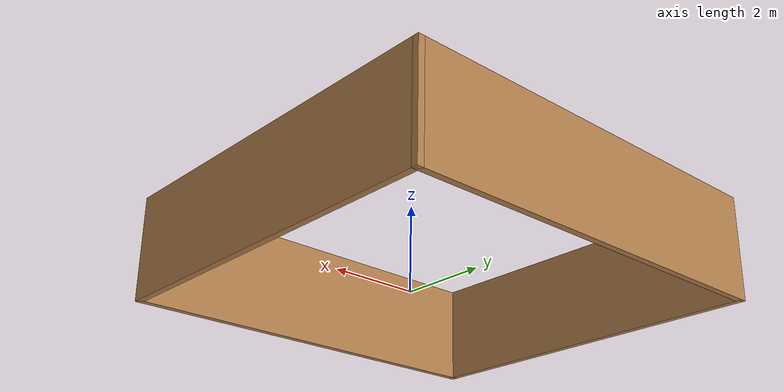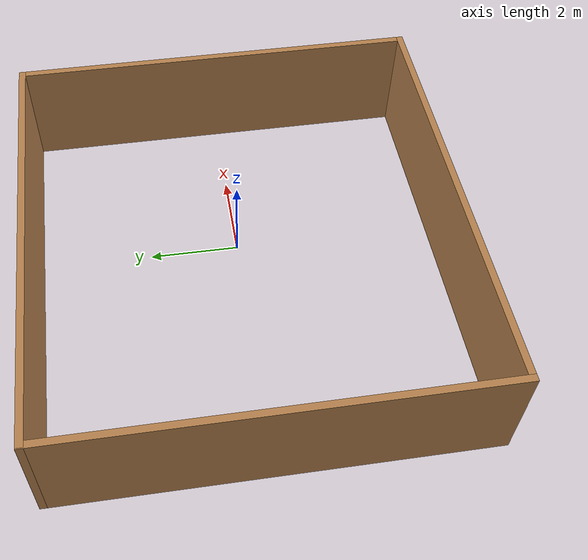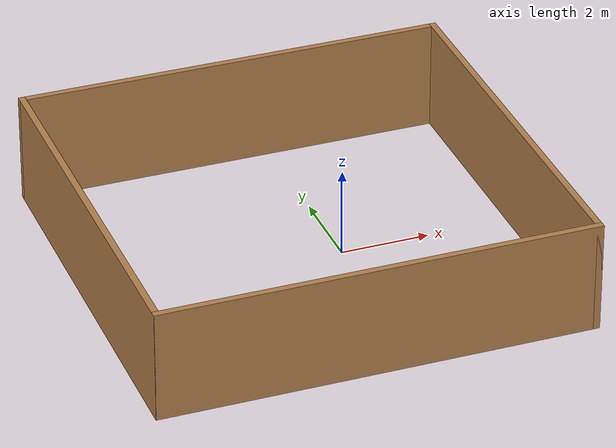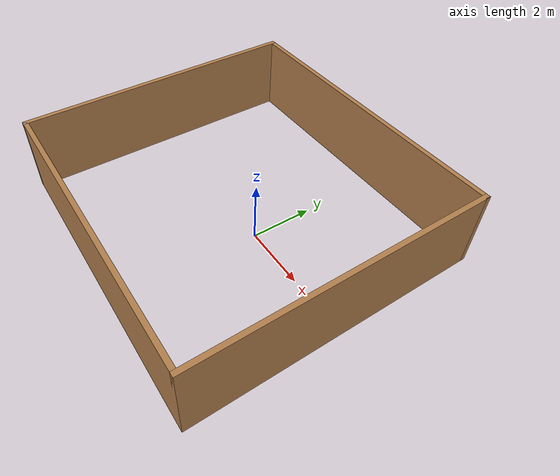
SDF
<?xml version='1.0'?>
<sdf version='1.7'>
  <model name='wall_02'>
    <pose>-0.888787 -0.012329 0 0 -0 0</pose>
    <link name='Wall_11'>
      <collision name='Wall_11_Collision'>
        <geometry>
          <box>
            <size>9.25 0.15 2.5</size>
          </box>
        </geometry>
        <pose>0 0 1.25 0 -0 0</pose>
      </collision>
      <visual name='Wall_11_Visual'>
        <pose>0 0 1.25 0 -0 0</pose>
        <geometry>
          <box>
            <size>9.25 0.15 2.5</size>
          </box>
        </geometry>
        <material>
          <script>
            <uri>file://media/materials/scripts/gazebo.material</uri>
            <name>Gazebo/Wood</name>
          </script>
          <ambient>1 1 1 1</ambient>
        </material>
        <meta>
          <layer>0</layer>
        </meta>
      </visual>
      <pose>4.8 -0 0 0 -0 1.5708</pose>
    </link>
    <link name='Wall_13'>
      <collision name='Wall_13_Collision'>
        <geometry>
          <box>
            <size>9.75 0.15 2.5</size>
          </box>
        </geometry>
        <pose>0 0 1.25 0 -0 0</pose>
      </collision>
      <visual name='Wall_13_Visual'>
        <pose>0 0 1.25 0 -0 0</pose>
        <geometry>
          <box>
            <size>9.75 0.15 2.5</size>
          </box>
        </geometry>
        <material>
          <script>
            <uri>file://media/materials/scripts/gazebo.material</uri>
            <name>Gazebo/Wood</name>
          </script>
          <ambient>1 1 1 1</ambient>
        </material>
        <meta>
          <layer>0</layer>
        </meta>
      </visual>
      <pose>0 4.55 0 0 -0 3.14159</pose>
    </link>
    <link name='Wall_14'>
      <collision name='Wall_14_Collision'>
        <geometry>
          <box>
            <size>9.25 0.15 2.5</size>
          </box>
        </geometry>
        <pose>0 0 1.25 0 -0 0</pose>
      </collision>
      <visual name='Wall_14_Visual'>
        <pose>0 0 1.25 0 -0 0</pose>
        <geometry>
          <box>
            <size>9.25 0.15 2.5</size>
          </box>
        </geometry>
        <material>
          <script>
            <uri>file://media/materials/scripts/gazebo.material</uri>
            <name>Gazebo/Wood</name>
          </script>
          <ambient>1 1 1 1</ambient>
        </material>
        <meta>
          <layer>0</layer>
        </meta>
      </visual>
      <pose>-4.8 -0 0 0 -0 -1.5708</pose>
    </link>
    <link name='Wall_15'>
      <collision name='Wall_15_Collision'>
        <geometry>
          <box>
            <size>0.15 0.15 2.5</size>
          </box>
        </geometry>
        <pose>0 0 1.25 0 -0 0</pose>
      </collision>
      <visual name='Wall_15_Visual'>
        <pose>0 0 1.25 0 -0 0</pose>
        <geometry>
          <box>
            <size>0.15 0.15 2.5</size>
          </box>
        </geometry>
        <material>
          <script>
            <uri>file://media/materials/scripts/gazebo.material</uri>
            <name>Gazebo/Grey</name>
          </script>
          <ambient>1 1 1 1</ambient>
        </material>
        <meta>
          <layer>0</layer>
        </meta>
      </visual>
      <pose>-4.8 -4.55 0 0 -0 0</pose>
    </link>
    <link name='Wall_9'>
      <collision name='Wall_9_Collision'>
        <geometry>
          <box>
            <size>9.75 0.15 2.5</size>
          </box>
        </geometry>
        <pose>0 0 1.25 0 -0 0</pose>
      </collision>
      <visual name='Wall_9_Visual'>
        <pose>0 0 1.25 0 -0 0</pose>
        <geometry>
          <box>
            <size>9.75 0.15 2.5</size>
          </box>
        </geometry>
        <material>
          <script>
            <uri>file://media/materials/scripts/gazebo.material</uri>
            <name>Gazebo/Wood</name>
          </script>
          <ambient>1 1 1 1</ambient>
        </material>
        <meta>
          <layer>0</layer>
        </meta>
      </visual>
      <pose>0 -4.55 0 0 -0 0</pose>
    </link>
    <static>1</static>
  </model>
</sdf>
